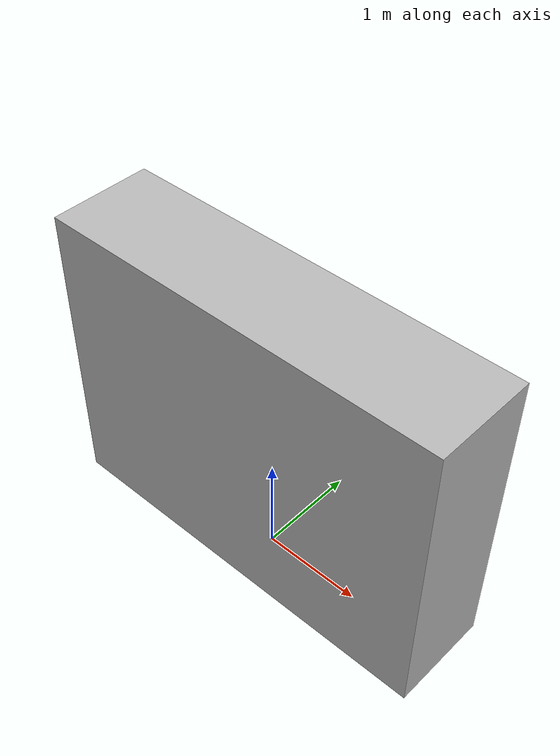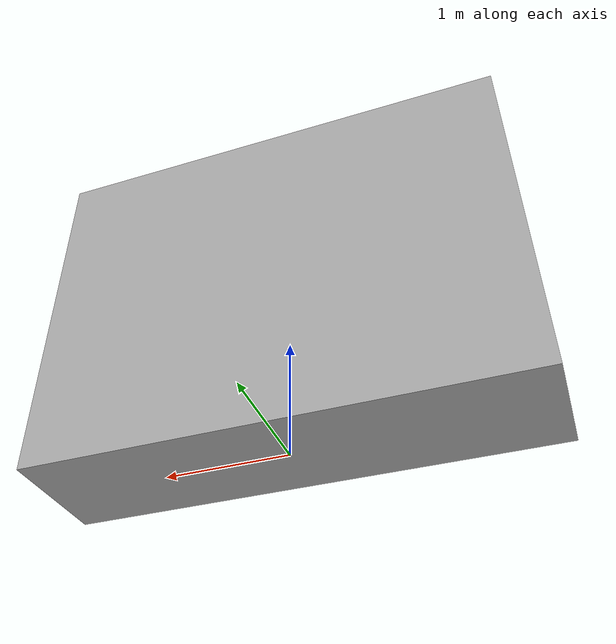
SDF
<?xml version='1.0' ?>
<sdf version='1.5'>
  <model name='slides_19'>
    <static>true</static>
    <link name='link'>
      <pose>0 0 1.5 0 0 0</pose>
      <collision name='collision'>
        <geometry>
          <box>
            <size>4.0 1.0 3.0</size>
          </box>
        </geometry>
      </collision>
      <visual name='visual'>
        <geometry>
          <box>
            <size>4.0 1.0 3.0</size>
          </box>
        </geometry>
        <material>
          <script>
            <uri>model://slides_19/materials/scripts</uri>
            <uri>model://slides_19/materials/textures</uri>
            <name>Slides/slides_19</name>
          </script>
        </material>
      </visual>
    </link>
  </model>
</sdf>
